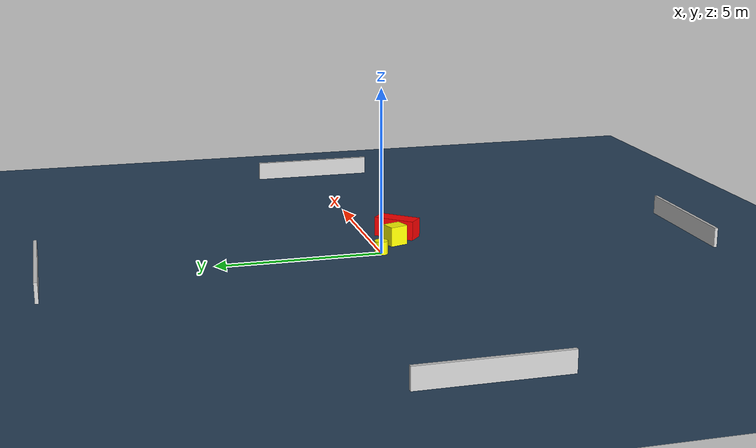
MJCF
<?xml version="1.0" ?>
<mujoco model="generated_environment">
  <option timestep="0.01" integrator="RK4" cone="elliptic"/>
  <default>
    <geom density="1"/>
  </default>
  <asset>
    <texture builtin="gradient" height="3072" name="skybox" rgb1="0.3 0.5 0.7" rgb2="0 0 0" type="skybox" width="512"/>
    <texture builtin="checker" height="300" name="groundplane" rgb1="0.2 0.3 0.4" rgb2="0.1 0.2 0.3" type="2d" width="300"/>
    <material name="groundplane" reflectance="0.2" texrepeat="5 5" texture="groundplane"/>
  </asset>
  <worldbody>
    <light dir="0 0 -1" directional="true" pos="0 0 1.5"/>
    <geom condim="3" friction="0.5 0.005 0.001" material="groundplane" name="floor" pos="0 0 0" size="0 0 0.05" type="plane"/>
    <body name="walls">
      <geom name="wall_1" condim="4" pos="-10.0 0.0 0.3" rgba="0.800000011920929 0.800000011920929 0.800000011920929 1.0" size="0.05 2.0 0.3" type="box"/>
      <geom name="wall_2" condim="4" pos="10.0 0.0 0.3" rgba="0.800000011920929 0.800000011920929 0.800000011920929 1.0" size="0.05 2.0 0.3" type="box"/>
      <geom name="wall_3" condim="4" pos="0.0 -10.0 0.3" rgba="0.800000011920929 0.800000011920929 0.800000011920929 1.0" size="2.0 0.05 0.3" type="box"/>
      <geom name="wall_4" condim="4" pos="0.0 10.0 0.3" rgba="0.800000011920929 0.800000011920929 0.800000011920929 1.0" size="2.0 0.05 0.3" type="box"/>
    </body>
    <body name="robot">
      <joint name="joint_x" type="slide" pos="0 0 0" axis="1 0 0"/>
      <joint name="joint_y" type="slide" pos="0 0 0" axis="0 1 0"/>
      <geom name="robot" type="cylinder" pos="0.0 0.0 0.2" size="0.2 0.2 0.0" mass="5.0" friction="1.0 0.005 0.0001" condim="4" rgba="1.0 1.0 0.0 1.0"/>
    </body>
    <body name="obstacle_1_movable">
      <geom name="obstacle_1_movable" condim="4" pos="0.8605532916459003 -0.6715190940377759 0.3" euler="0 0 198.4859272565618" friction="0.0 0.005 0.001" rgba="1.0 1.0 0.0 1.0" size="0.2380735390932711 0.2857323059738247 0.3" type="box" mass="0.1"/>
      <joint type="free"/>
    </body>
    <body name="obstacle_2_static">
      <geom name="obstacle_2_static" condim="4" pos="1.6430236243207743 -0.9439078701889575 0.3" euler="0 0 49.32705740679225" friction="0.0 0.005 0.001" rgba="1.0 0.0 0.0 1.0" size="0.6532047563677743 0.2652293370766274 0.3" type="box"/>
    </body>
  </worldbody>
  <actuator>
    <motor name="actuator_x" joint="joint_x" gear="1" ctrlrange="-1 1"/>
    <motor name="actuator_y" joint="joint_y" gear="1" ctrlrange="-1 1"/>
  </actuator>
</mujoco>
